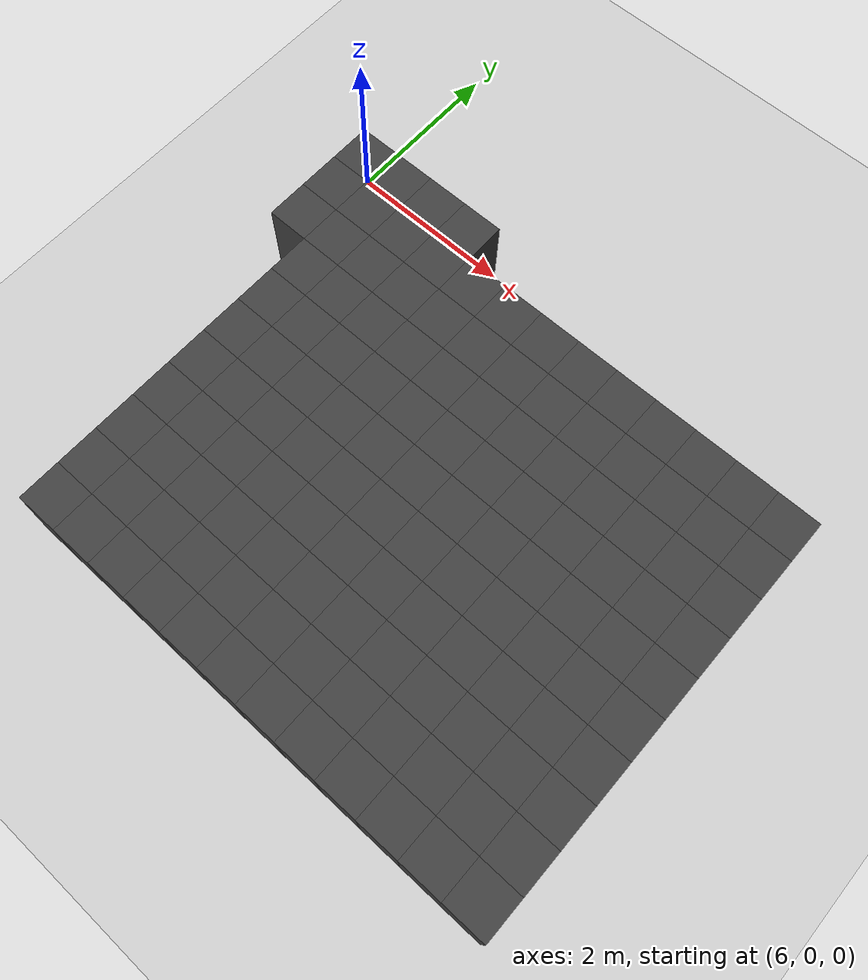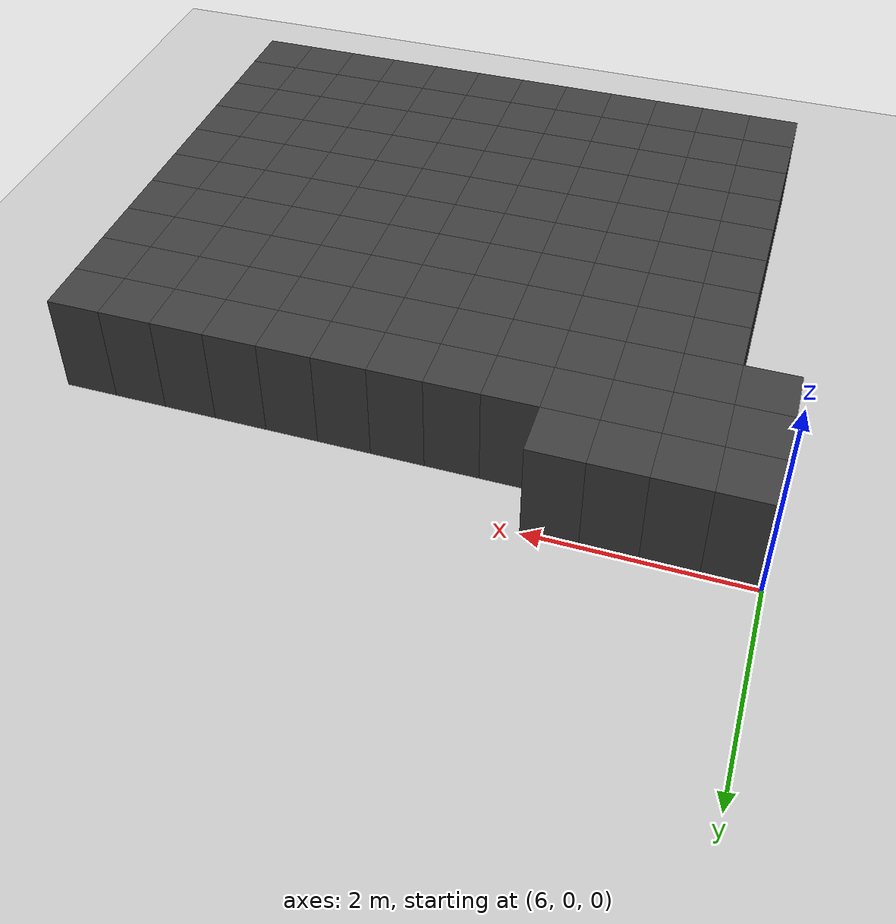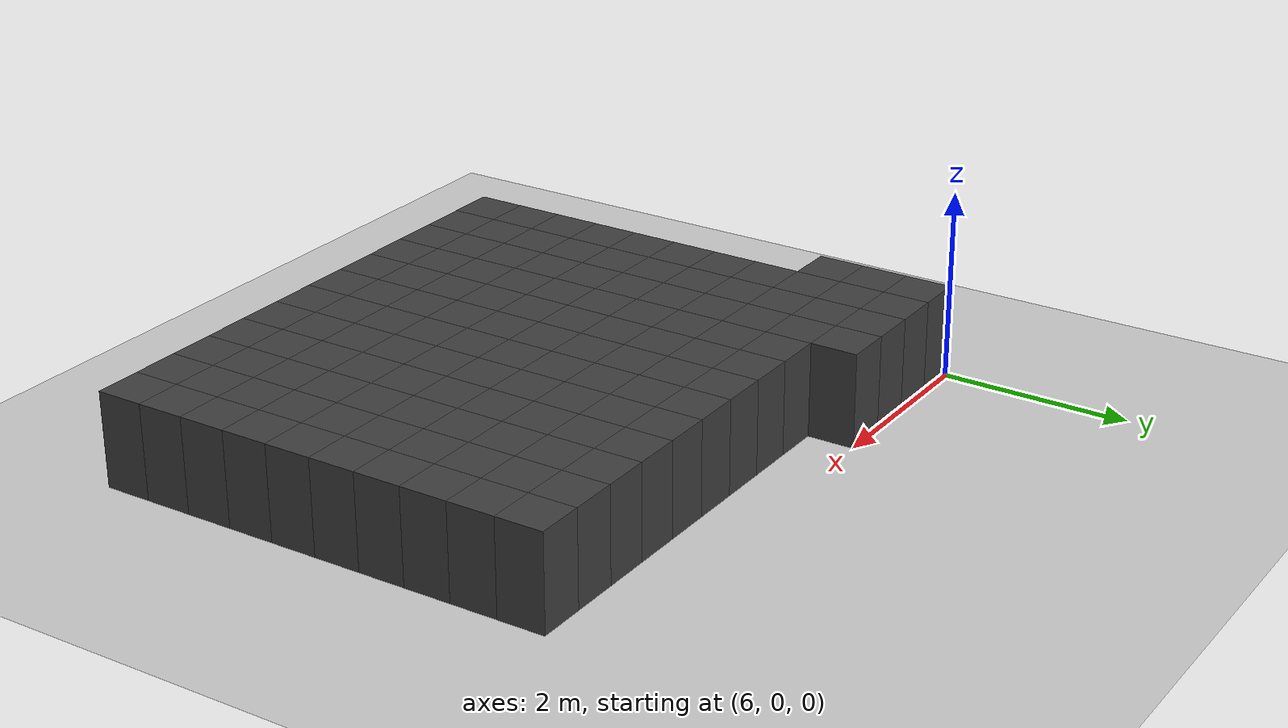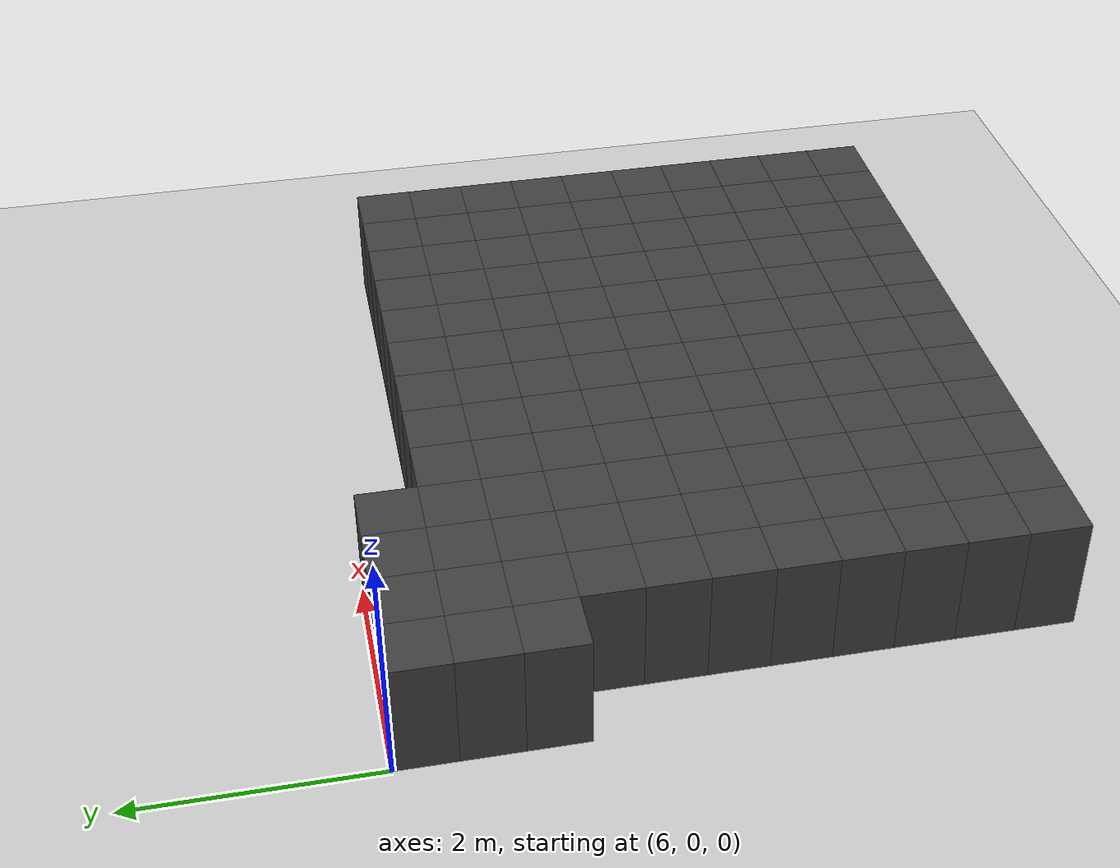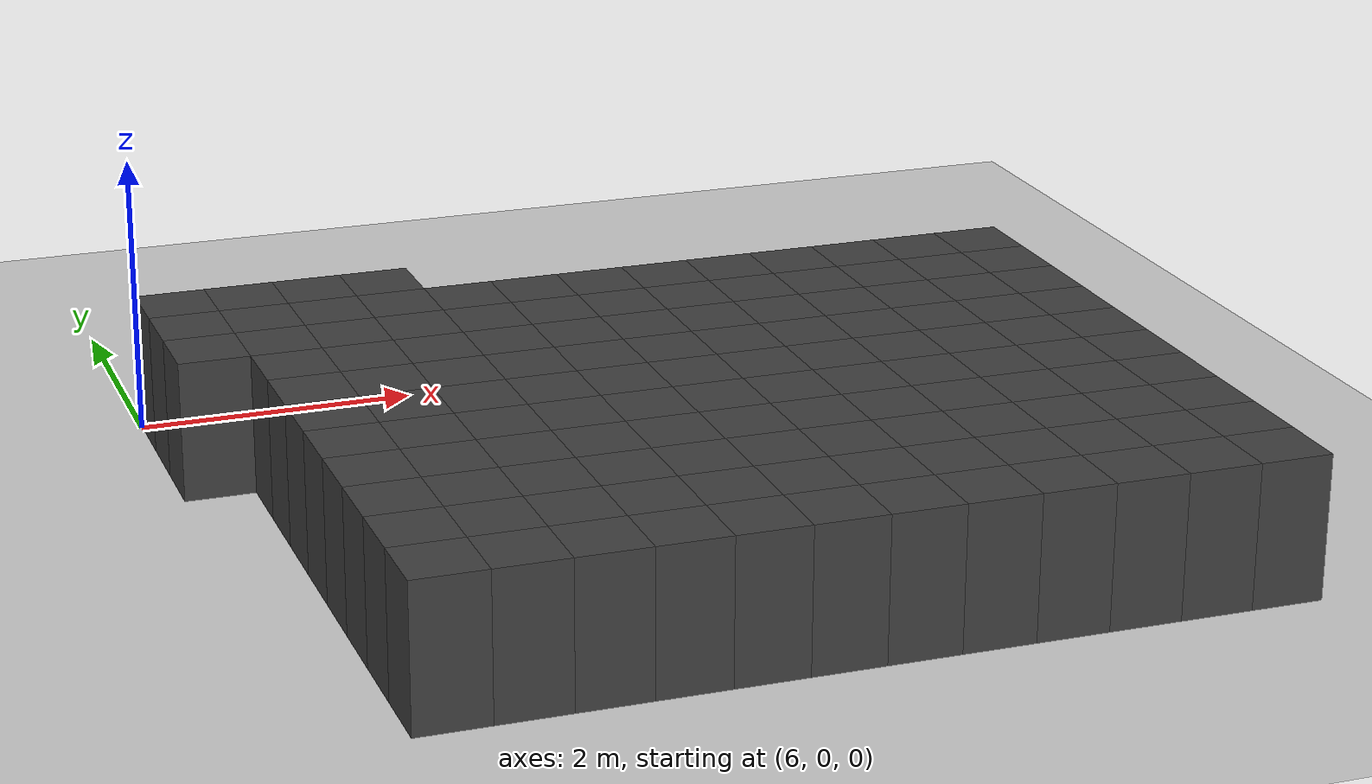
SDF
<sdf version="1.7">
 <world name="map_11779">
  <model name="ground_plane">
   <static>true</static>
   <link name="link">
    <collision name="collision">
     <geometry><plane><normal>0 0 1</normal><size>200 200</size></plane></geometry>
    </collision>
    <visual name="visual">
     <geometry><plane><normal>0 0 1</normal><size>200 200</size></plane></geometry>
     <material><ambient>0.8 0.8 0.8 1</ambient><diffuse>0.8 0.8 0.8 1</diffuse></material>
    </visual>
   </link>
  </model>
  <model name="maze_environment">
   <static>true</static>
   <link name="wall_1041">
    <pose>6.250 -0.250 0.500 0 0 0</pose>
    <collision name="col"><geometry><box><size>0.5 0.5 1.0</size></box></geometry></collision>
    <visual name="vis">
     <geometry><box><size>0.5 0.5 1.0</size></box></geometry>
     <material><ambient>0.15 0.15 0.15 1</ambient><diffuse>0.25 0.25 0.25 1</diffuse></material>
    </visual>
   </link>
   <link name="wall_1042">
    <pose>6.750 -0.250 0.500 0 0 0</pose>
    <collision name="col"><geometry><box><size>0.5 0.5 1.0</size></box></geometry></collision>
    <visual name="vis">
     <geometry><box><size>0.5 0.5 1.0</size></box></geometry>
     <material><ambient>0.15 0.15 0.15 1</ambient><diffuse>0.25 0.25 0.25 1</diffuse></material>
    </visual>
   </link>
   <link name="wall_1043">
    <pose>7.250 -0.250 0.500 0 0 0</pose>
    <collision name="col"><geometry><box><size>0.5 0.5 1.0</size></box></geometry></collision>
    <visual name="vis">
     <geometry><box><size>0.5 0.5 1.0</size></box></geometry>
     <material><ambient>0.15 0.15 0.15 1</ambient><diffuse>0.25 0.25 0.25 1</diffuse></material>
    </visual>
   </link>
   <link name="wall_1044">
    <pose>7.750 -0.250 0.500 0 0 0</pose>
    <collision name="col"><geometry><box><size>0.5 0.5 1.0</size></box></geometry></collision>
    <visual name="vis">
     <geometry><box><size>0.5 0.5 1.0</size></box></geometry>
     <material><ambient>0.15 0.15 0.15 1</ambient><diffuse>0.25 0.25 0.25 1</diffuse></material>
    </visual>
   </link>
   <link name="wall_1082">
    <pose>6.250 -0.750 0.500 0 0 0</pose>
    <collision name="col"><geometry><box><size>0.5 0.5 1.0</size></box></geometry></collision>
    <visual name="vis">
     <geometry><box><size>0.5 0.5 1.0</size></box></geometry>
     <material><ambient>0.15 0.15 0.15 1</ambient><diffuse>0.25 0.25 0.25 1</diffuse></material>
    </visual>
   </link>
   <link name="wall_1083">
    <pose>6.750 -0.750 0.500 0 0 0</pose>
    <collision name="col"><geometry><box><size>0.5 0.5 1.0</size></box></geometry></collision>
    <visual name="vis">
     <geometry><box><size>0.5 0.5 1.0</size></box></geometry>
     <material><ambient>0.15 0.15 0.15 1</ambient><diffuse>0.25 0.25 0.25 1</diffuse></material>
    </visual>
   </link>
   <link name="wall_1084">
    <pose>7.250 -0.750 0.500 0 0 0</pose>
    <collision name="col"><geometry><box><size>0.5 0.5 1.0</size></box></geometry></collision>
    <visual name="vis">
     <geometry><box><size>0.5 0.5 1.0</size></box></geometry>
     <material><ambient>0.15 0.15 0.15 1</ambient><diffuse>0.25 0.25 0.25 1</diffuse></material>
    </visual>
   </link>
   <link name="wall_1085">
    <pose>7.750 -0.750 0.500 0 0 0</pose>
    <collision name="col"><geometry><box><size>0.5 0.5 1.0</size></box></geometry></collision>
    <visual name="vis">
     <geometry><box><size>0.5 0.5 1.0</size></box></geometry>
     <material><ambient>0.15 0.15 0.15 1</ambient><diffuse>0.25 0.25 0.25 1</diffuse></material>
    </visual>
   </link>
   <link name="wall_1086">
    <pose>8.250 -0.750 0.500 0 0 0</pose>
    <collision name="col"><geometry><box><size>0.5 0.5 1.0</size></box></geometry></collision>
    <visual name="vis">
     <geometry><box><size>0.5 0.5 1.0</size></box></geometry>
     <material><ambient>0.15 0.15 0.15 1</ambient><diffuse>0.25 0.25 0.25 1</diffuse></material>
    </visual>
   </link>
   <link name="wall_1087">
    <pose>8.750 -0.750 0.500 0 0 0</pose>
    <collision name="col"><geometry><box><size>0.5 0.5 1.0</size></box></geometry></collision>
    <visual name="vis">
     <geometry><box><size>0.5 0.5 1.0</size></box></geometry>
     <material><ambient>0.15 0.15 0.15 1</ambient><diffuse>0.25 0.25 0.25 1</diffuse></material>
    </visual>
   </link>
   <link name="wall_1088">
    <pose>9.250 -0.750 0.500 0 0 0</pose>
    <collision name="col"><geometry><box><size>0.5 0.5 1.0</size></box></geometry></collision>
    <visual name="vis">
     <geometry><box><size>0.5 0.5 1.0</size></box></geometry>
     <material><ambient>0.15 0.15 0.15 1</ambient><diffuse>0.25 0.25 0.25 1</diffuse></material>
    </visual>
   </link>
   <link name="wall_1089">
    <pose>9.750 -0.750 0.500 0 0 0</pose>
    <collision name="col"><geometry><box><size>0.5 0.5 1.0</size></box></geometry></collision>
    <visual name="vis">
     <geometry><box><size>0.5 0.5 1.0</size></box></geometry>
     <material><ambient>0.15 0.15 0.15 1</ambient><diffuse>0.25 0.25 0.25 1</diffuse></material>
    </visual>
   </link>
   <link name="wall_1090">
    <pose>10.250 -0.750 0.500 0 0 0</pose>
    <collision name="col"><geometry><box><size>0.5 0.5 1.0</size></box></geometry></collision>
    <visual name="vis">
     <geometry><box><size>0.5 0.5 1.0</size></box></geometry>
     <material><ambient>0.15 0.15 0.15 1</ambient><diffuse>0.25 0.25 0.25 1</diffuse></material>
    </visual>
   </link>
   <link name="wall_1091">
    <pose>10.750 -0.750 0.500 0 0 0</pose>
    <collision name="col"><geometry><box><size>0.5 0.5 1.0</size></box></geometry></collision>
    <visual name="vis">
     <geometry><box><size>0.5 0.5 1.0</size></box></geometry>
     <material><ambient>0.15 0.15 0.15 1</ambient><diffuse>0.25 0.25 0.25 1</diffuse></material>
    </visual>
   </link>
   <link name="wall_1092">
    <pose>11.250 -0.750 0.500 0 0 0</pose>
    <collision name="col"><geometry><box><size>0.5 0.5 1.0</size></box></geometry></collision>
    <visual name="vis">
     <geometry><box><size>0.5 0.5 1.0</size></box></geometry>
     <material><ambient>0.15 0.15 0.15 1</ambient><diffuse>0.25 0.25 0.25 1</diffuse></material>
    </visual>
   </link>
   <link name="wall_1093">
    <pose>11.750 -0.750 0.500 0 0 0</pose>
    <collision name="col"><geometry><box><size>0.5 0.5 1.0</size></box></geometry></collision>
    <visual name="vis">
     <geometry><box><size>0.5 0.5 1.0</size></box></geometry>
     <material><ambient>0.15 0.15 0.15 1</ambient><diffuse>0.25 0.25 0.25 1</diffuse></material>
    </visual>
   </link>
   <link name="wall_1094">
    <pose>12.250 -0.750 0.500 0 0 0</pose>
    <collision name="col"><geometry><box><size>0.5 0.5 1.0</size></box></geometry></collision>
    <visual name="vis">
     <geometry><box><size>0.5 0.5 1.0</size></box></geometry>
     <material><ambient>0.15 0.15 0.15 1</ambient><diffuse>0.25 0.25 0.25 1</diffuse></material>
    </visual>
   </link>
   <link name="wall_1122">
    <pose>6.250 -1.250 0.500 0 0 0</pose>
    <collision name="col"><geometry><box><size>0.5 0.5 1.0</size></box></geometry></collision>
    <visual name="vis">
     <geometry><box><size>0.5 0.5 1.0</size></box></geometry>
     <material><ambient>0.15 0.15 0.15 1</ambient><diffuse>0.25 0.25 0.25 1</diffuse></material>
    </visual>
   </link>
   <link name="wall_1123">
    <pose>6.750 -1.250 0.500 0 0 0</pose>
    <collision name="col"><geometry><box><size>0.5 0.5 1.0</size></box></geometry></collision>
    <visual name="vis">
     <geometry><box><size>0.5 0.5 1.0</size></box></geometry>
     <material><ambient>0.15 0.15 0.15 1</ambient><diffuse>0.25 0.25 0.25 1</diffuse></material>
    </visual>
   </link>
   <link name="wall_1124">
    <pose>7.250 -1.250 0.500 0 0 0</pose>
    <collision name="col"><geometry><box><size>0.5 0.5 1.0</size></box></geometry></collision>
    <visual name="vis">
     <geometry><box><size>0.5 0.5 1.0</size></box></geometry>
     <material><ambient>0.15 0.15 0.15 1</ambient><diffuse>0.25 0.25 0.25 1</diffuse></material>
    </visual>
   </link>
   <link name="wall_1125">
    <pose>7.750 -1.250 0.500 0 0 0</pose>
    <collision name="col"><geometry><box><size>0.5 0.5 1.0</size></box></geometry></collision>
    <visual name="vis">
     <geometry><box><size>0.5 0.5 1.0</size></box></geometry>
     <material><ambient>0.15 0.15 0.15 1</ambient><diffuse>0.25 0.25 0.25 1</diffuse></material>
    </visual>
   </link>
   <link name="wall_1126">
    <pose>8.250 -1.250 0.500 0 0 0</pose>
    <collision name="col"><geometry><box><size>0.5 0.5 1.0</size></box></geometry></collision>
    <visual name="vis">
     <geometry><box><size>0.5 0.5 1.0</size></box></geometry>
     <material><ambient>0.15 0.15 0.15 1</ambient><diffuse>0.25 0.25 0.25 1</diffuse></material>
    </visual>
   </link>
   <link name="wall_1127">
    <pose>8.750 -1.250 0.500 0 0 0</pose>
    <collision name="col"><geometry><box><size>0.5 0.5 1.0</size></box></geometry></collision>
    <visual name="vis">
     <geometry><box><size>0.5 0.5 1.0</size></box></geometry>
     <material><ambient>0.15 0.15 0.15 1</ambient><diffuse>0.25 0.25 0.25 1</diffuse></material>
    </visual>
   </link>
   <link name="wall_1128">
    <pose>9.250 -1.250 0.500 0 0 0</pose>
    <collision name="col"><geometry><box><size>0.5 0.5 1.0</size></box></geometry></collision>
    <visual name="vis">
     <geometry><box><size>0.5 0.5 1.0</size></box></geometry>
     <material><ambient>0.15 0.15 0.15 1</ambient><diffuse>0.25 0.25 0.25 1</diffuse></material>
    </visual>
   </link>
   <link name="wall_1129">
    <pose>9.750 -1.250 0.500 0 0 0</pose>
    <collision name="col"><geometry><box><size>0.5 0.5 1.0</size></box></geometry></collision>
    <visual name="vis">
     <geometry><box><size>0.5 0.5 1.0</size></box></geometry>
     <material><ambient>0.15 0.15 0.15 1</ambient><diffuse>0.25 0.25 0.25 1</diffuse></material>
    </visual>
   </link>
   <link name="wall_1130">
    <pose>10.250 -1.250 0.500 0 0 0</pose>
    <collision name="col"><geometry><box><size>0.5 0.5 1.0</size></box></geometry></collision>
    <visual name="vis">
     <geometry><box><size>0.5 0.5 1.0</size></box></geometry>
     <material><ambient>0.15 0.15 0.15 1</ambient><diffuse>0.25 0.25 0.25 1</diffuse></material>
    </visual>
   </link>
   <link name="wall_1131">
    <pose>10.750 -1.250 0.500 0 0 0</pose>
    <collision name="col"><geometry><box><size>0.5 0.5 1.0</size></box></geometry></collision>
    <visual name="vis">
     <geometry><box><size>0.5 0.5 1.0</size></box></geometry>
     <material><ambient>0.15 0.15 0.15 1</ambient><diffuse>0.25 0.25 0.25 1</diffuse></material>
    </visual>
   </link>
   <link name="wall_1132">
    <pose>11.250 -1.250 0.500 0 0 0</pose>
    <collision name="col"><geometry><box><size>0.5 0.5 1.0</size></box></geometry></collision>
    <visual name="vis">
     <geometry><box><size>0.5 0.5 1.0</size></box></geometry>
     <material><ambient>0.15 0.15 0.15 1</ambient><diffuse>0.25 0.25 0.25 1</diffuse></material>
    </visual>
   </link>
   <link name="wall_1133">
    <pose>11.750 -1.250 0.500 0 0 0</pose>
    <collision name="col"><geometry><box><size>0.5 0.5 1.0</size></box></geometry></collision>
    <visual name="vis">
     <geometry><box><size>0.5 0.5 1.0</size></box></geometry>
     <material><ambient>0.15 0.15 0.15 1</ambient><diffuse>0.25 0.25 0.25 1</diffuse></material>
    </visual>
   </link>
   <link name="wall_1134">
    <pose>12.250 -1.250 0.500 0 0 0</pose>
    <collision name="col"><geometry><box><size>0.5 0.5 1.0</size></box></geometry></collision>
    <visual name="vis">
     <geometry><box><size>0.5 0.5 1.0</size></box></geometry>
     <material><ambient>0.15 0.15 0.15 1</ambient><diffuse>0.25 0.25 0.25 1</diffuse></material>
    </visual>
   </link>
   <link name="wall_1165">
    <pose>6.750 -1.750 0.500 0 0 0</pose>
    <collision name="col"><geometry><box><size>0.5 0.5 1.0</size></box></geometry></collision>
    <visual name="vis">
     <geometry><box><size>0.5 0.5 1.0</size></box></geometry>
     <material><ambient>0.15 0.15 0.15 1</ambient><diffuse>0.25 0.25 0.25 1</diffuse></material>
    </visual>
   </link>
   <link name="wall_1166">
    <pose>7.250 -1.750 0.500 0 0 0</pose>
    <collision name="col"><geometry><box><size>0.5 0.5 1.0</size></box></geometry></collision>
    <visual name="vis">
     <geometry><box><size>0.5 0.5 1.0</size></box></geometry>
     <material><ambient>0.15 0.15 0.15 1</ambient><diffuse>0.25 0.25 0.25 1</diffuse></material>
    </visual>
   </link>
   <link name="wall_1167">
    <pose>7.750 -1.750 0.500 0 0 0</pose>
    <collision name="col"><geometry><box><size>0.5 0.5 1.0</size></box></geometry></collision>
    <visual name="vis">
     <geometry><box><size>0.5 0.5 1.0</size></box></geometry>
     <material><ambient>0.15 0.15 0.15 1</ambient><diffuse>0.25 0.25 0.25 1</diffuse></material>
    </visual>
   </link>
   <link name="wall_1168">
    <pose>8.250 -1.750 0.500 0 0 0</pose>
    <collision name="col"><geometry><box><size>0.5 0.5 1.0</size></box></geometry></collision>
    <visual name="vis">
     <geometry><box><size>0.5 0.5 1.0</size></box></geometry>
     <material><ambient>0.15 0.15 0.15 1</ambient><diffuse>0.25 0.25 0.25 1</diffuse></material>
    </visual>
   </link>
   <link name="wall_1169">
    <pose>8.750 -1.750 0.500 0 0 0</pose>
    <collision name="col"><geometry><box><size>0.5 0.5 1.0</size></box></geometry></collision>
    <visual name="vis">
     <geometry><box><size>0.5 0.5 1.0</size></box></geometry>
     <material><ambient>0.15 0.15 0.15 1</ambient><diffuse>0.25 0.25 0.25 1</diffuse></material>
    </visual>
   </link>
   <link name="wall_1170">
    <pose>9.250 -1.750 0.500 0 0 0</pose>
    <collision name="col"><geometry><box><size>0.5 0.5 1.0</size></box></geometry></collision>
    <visual name="vis">
     <geometry><box><size>0.5 0.5 1.0</size></box></geometry>
     <material><ambient>0.15 0.15 0.15 1</ambient><diffuse>0.25 0.25 0.25 1</diffuse></material>
    </visual>
   </link>
   <link name="wall_1171">
    <pose>9.750 -1.750 0.500 0 0 0</pose>
    <collision name="col"><geometry><box><size>0.5 0.5 1.0</size></box></geometry></collision>
    <visual name="vis">
     <geometry><box><size>0.5 0.5 1.0</size></box></geometry>
     <material><ambient>0.15 0.15 0.15 1</ambient><diffuse>0.25 0.25 0.25 1</diffuse></material>
    </visual>
   </link>
   <link name="wall_1172">
    <pose>10.250 -1.750 0.500 0 0 0</pose>
    <collision name="col"><geometry><box><size>0.5 0.5 1.0</size></box></geometry></collision>
    <visual name="vis">
     <geometry><box><size>0.5 0.5 1.0</size></box></geometry>
     <material><ambient>0.15 0.15 0.15 1</ambient><diffuse>0.25 0.25 0.25 1</diffuse></material>
    </visual>
   </link>
   <link name="wall_1173">
    <pose>10.750 -1.750 0.500 0 0 0</pose>
    <collision name="col"><geometry><box><size>0.5 0.5 1.0</size></box></geometry></collision>
    <visual name="vis">
     <geometry><box><size>0.5 0.5 1.0</size></box></geometry>
     <material><ambient>0.15 0.15 0.15 1</ambient><diffuse>0.25 0.25 0.25 1</diffuse></material>
    </visual>
   </link>
   <link name="wall_1174">
    <pose>11.250 -1.750 0.500 0 0 0</pose>
    <collision name="col"><geometry><box><size>0.5 0.5 1.0</size></box></geometry></collision>
    <visual name="vis">
     <geometry><box><size>0.5 0.5 1.0</size></box></geometry>
     <material><ambient>0.15 0.15 0.15 1</ambient><diffuse>0.25 0.25 0.25 1</diffuse></material>
    </visual>
   </link>
   <link name="wall_1175">
    <pose>11.750 -1.750 0.500 0 0 0</pose>
    <collision name="col"><geometry><box><size>0.5 0.5 1.0</size></box></geometry></collision>
    <visual name="vis">
     <geometry><box><size>0.5 0.5 1.0</size></box></geometry>
     <material><ambient>0.15 0.15 0.15 1</ambient><diffuse>0.25 0.25 0.25 1</diffuse></material>
    </visual>
   </link>
   <link name="wall_1176">
    <pose>12.250 -1.750 0.500 0 0 0</pose>
    <collision name="col"><geometry><box><size>0.5 0.5 1.0</size></box></geometry></collision>
    <visual name="vis">
     <geometry><box><size>0.5 0.5 1.0</size></box></geometry>
     <material><ambient>0.15 0.15 0.15 1</ambient><diffuse>0.25 0.25 0.25 1</diffuse></material>
    </visual>
   </link>
   <link name="wall_1207">
    <pose>6.750 -2.250 0.500 0 0 0</pose>
    <collision name="col"><geometry><box><size>0.5 0.5 1.0</size></box></geometry></collision>
    <visual name="vis">
     <geometry><box><size>0.5 0.5 1.0</size></box></geometry>
     <material><ambient>0.15 0.15 0.15 1</ambient><diffuse>0.25 0.25 0.25 1</diffuse></material>
    </visual>
   </link>
   <link name="wall_1208">
    <pose>7.250 -2.250 0.500 0 0 0</pose>
    <collision name="col"><geometry><box><size>0.5 0.5 1.0</size></box></geometry></collision>
    <visual name="vis">
     <geometry><box><size>0.5 0.5 1.0</size></box></geometry>
     <material><ambient>0.15 0.15 0.15 1</ambient><diffuse>0.25 0.25 0.25 1</diffuse></material>
    </visual>
   </link>
   <link name="wall_1209">
    <pose>7.750 -2.250 0.500 0 0 0</pose>
    <collision name="col"><geometry><box><size>0.5 0.5 1.0</size></box></geometry></collision>
    <visual name="vis">
     <geometry><box><size>0.5 0.5 1.0</size></box></geometry>
     <material><ambient>0.15 0.15 0.15 1</ambient><diffuse>0.25 0.25 0.25 1</diffuse></material>
    </visual>
   </link>
   <link name="wall_1210">
    <pose>8.250 -2.250 0.500 0 0 0</pose>
    <collision name="col"><geometry><box><size>0.5 0.5 1.0</size></box></geometry></collision>
    <visual name="vis">
     <geometry><box><size>0.5 0.5 1.0</size></box></geometry>
     <material><ambient>0.15 0.15 0.15 1</ambient><diffuse>0.25 0.25 0.25 1</diffuse></material>
    </visual>
   </link>
   <link name="wall_1211">
    <pose>8.750 -2.250 0.500 0 0 0</pose>
    <collision name="col"><geometry><box><size>0.5 0.5 1.0</size></box></geometry></collision>
    <visual name="vis">
     <geometry><box><size>0.5 0.5 1.0</size></box></geometry>
     <material><ambient>0.15 0.15 0.15 1</ambient><diffuse>0.25 0.25 0.25 1</diffuse></material>
    </visual>
   </link>
   <link name="wall_1212">
    <pose>9.250 -2.250 0.500 0 0 0</pose>
    <collision name="col"><geometry><box><size>0.5 0.5 1.0</size></box></geometry></collision>
    <visual name="vis">
     <geometry><box><size>0.5 0.5 1.0</size></box></geometry>
     <material><ambient>0.15 0.15 0.15 1</ambient><diffuse>0.25 0.25 0.25 1</diffuse></material>
    </visual>
   </link>
   <link name="wall_1213">
    <pose>9.750 -2.250 0.500 0 0 0</pose>
    <collision name="col"><geometry><box><size>0.5 0.5 1.0</size></box></geometry></collision>
    <visual name="vis">
     <geometry><box><size>0.5 0.5 1.0</size></box></geometry>
     <material><ambient>0.15 0.15 0.15 1</ambient><diffuse>0.25 0.25 0.25 1</diffuse></material>
    </visual>
   </link>
   <link name="wall_1214">
    <pose>10.250 -2.250 0.500 0 0 0</pose>
    <collision name="col"><geometry><box><size>0.5 0.5 1.0</size></box></geometry></collision>
    <visual name="vis">
     <geometry><box><size>0.5 0.5 1.0</size></box></geometry>
     <material><ambient>0.15 0.15 0.15 1</ambient><diffuse>0.25 0.25 0.25 1</diffuse></material>
    </visual>
   </link>
   <link name="wall_1215">
    <pose>10.750 -2.250 0.500 0 0 0</pose>
    <collision name="col"><geometry><box><size>0.5 0.5 1.0</size></box></geometry></collision>
    <visual name="vis">
     <geometry><box><size>0.5 0.5 1.0</size></box></geometry>
     <material><ambient>0.15 0.15 0.15 1</ambient><diffuse>0.25 0.25 0.25 1</diffuse></material>
    </visual>
   </link>
   <link name="wall_1216">
    <pose>11.250 -2.250 0.500 0 0 0</pose>
    <collision name="col"><geometry><box><size>0.5 0.5 1.0</size></box></geometry></collision>
    <visual name="vis">
     <geometry><box><size>0.5 0.5 1.0</size></box></geometry>
     <material><ambient>0.15 0.15 0.15 1</ambient><diffuse>0.25 0.25 0.25 1</diffuse></material>
    </visual>
   </link>
   <link name="wall_1217">
    <pose>11.750 -2.250 0.500 0 0 0</pose>
    <collision name="col"><geometry><box><size>0.5 0.5 1.0</size></box></geometry></collision>
    <visual name="vis">
     <geometry><box><size>0.5 0.5 1.0</size></box></geometry>
     <material><ambient>0.15 0.15 0.15 1</ambient><diffuse>0.25 0.25 0.25 1</diffuse></material>
    </visual>
   </link>
   <link name="wall_1218">
    <pose>12.250 -2.250 0.500 0 0 0</pose>
    <collision name="col"><geometry><box><size>0.5 0.5 1.0</size></box></geometry></collision>
    <visual name="vis">
     <geometry><box><size>0.5 0.5 1.0</size></box></geometry>
     <material><ambient>0.15 0.15 0.15 1</ambient><diffuse>0.25 0.25 0.25 1</diffuse></material>
    </visual>
   </link>
   <link name="wall_1247">
    <pose>6.750 -2.750 0.500 0 0 0</pose>
    <collision name="col"><geometry><box><size>0.5 0.5 1.0</size></box></geometry></collision>
    <visual name="vis">
     <geometry><box><size>0.5 0.5 1.0</size></box></geometry>
     <material><ambient>0.15 0.15 0.15 1</ambient><diffuse>0.25 0.25 0.25 1</diffuse></material>
    </visual>
   </link>
   <link name="wall_1248">
    <pose>7.250 -2.750 0.500 0 0 0</pose>
    <collision name="col"><geometry><box><size>0.5 0.5 1.0</size></box></geometry></collision>
    <visual name="vis">
     <geometry><box><size>0.5 0.5 1.0</size></box></geometry>
     <material><ambient>0.15 0.15 0.15 1</ambient><diffuse>0.25 0.25 0.25 1</diffuse></material>
    </visual>
   </link>
   <link name="wall_1249">
    <pose>7.750 -2.750 0.500 0 0 0</pose>
    <collision name="col"><geometry><box><size>0.5 0.5 1.0</size></box></geometry></collision>
    <visual name="vis">
     <geometry><box><size>0.5 0.5 1.0</size></box></geometry>
     <material><ambient>0.15 0.15 0.15 1</ambient><diffuse>0.25 0.25 0.25 1</diffuse></material>
    </visual>
   </link>
   <link name="wall_1250">
    <pose>8.250 -2.750 0.500 0 0 0</pose>
    <collision name="col"><geometry><box><size>0.5 0.5 1.0</size></box></geometry></collision>
    <visual name="vis">
     <geometry><box><size>0.5 0.5 1.0</size></box></geometry>
     <material><ambient>0.15 0.15 0.15 1</ambient><diffuse>0.25 0.25 0.25 1</diffuse></material>
    </visual>
   </link>
   <link name="wall_1251">
    <pose>8.750 -2.750 0.500 0 0 0</pose>
    <collision name="col"><geometry><box><size>0.5 0.5 1.0</size></box></geometry></collision>
    <visual name="vis">
     <geometry><box><size>0.5 0.5 1.0</size></box></geometry>
     <material><ambient>0.15 0.15 0.15 1</ambient><diffuse>0.25 0.25 0.25 1</diffuse></material>
    </visual>
   </link>
   <link name="wall_1252">
    <pose>9.250 -2.750 0.500 0 0 0</pose>
    <collision name="col"><geometry><box><size>0.5 0.5 1.0</size></box></geometry></collision>
    <visual name="vis">
     <geometry><box><size>0.5 0.5 1.0</size></box></geometry>
     <material><ambient>0.15 0.15 0.15 1</ambient><diffuse>0.25 0.25 0.25 1</diffuse></material>
    </visual>
   </link>
   <link name="wall_1253">
    <pose>9.750 -2.750 0.500 0 0 0</pose>
    <collision name="col"><geometry><box><size>0.5 0.5 1.0</size></box></geometry></collision>
    <visual name="vis">
     <geometry><box><size>0.5 0.5 1.0</size></box></geometry>
     <material><ambient>0.15 0.15 0.15 1</ambient><diffuse>0.25 0.25 0.25 1</diffuse></material>
    </visual>
   </link>
   <link name="wall_1254">
    <pose>10.250 -2.750 0.500 0 0 0</pose>
    <collision name="col"><geometry><box><size>0.5 0.5 1.0</size></box></geometry></collision>
    <visual name="vis">
     <geometry><box><size>0.5 0.5 1.0</size></box></geometry>
     <material><ambient>0.15 0.15 0.15 1</ambient><diffuse>0.25 0.25 0.25 1</diffuse></material>
    </visual>
   </link>
   <link name="wall_1255">
    <pose>10.750 -2.750 0.500 0 0 0</pose>
    <collision name="col"><geometry><box><size>0.5 0.5 1.0</size></box></geometry></collision>
    <visual name="vis">
     <geometry><box><size>0.5 0.5 1.0</size></box></geometry>
     <material><ambient>0.15 0.15 0.15 1</ambient><diffuse>0.25 0.25 0.25 1</diffuse></material>
    </visual>
   </link>
   <link name="wall_1256">
    <pose>11.250 -2.750 0.500 0 0 0</pose>
    <collision name="col"><geometry><box><size>0.5 0.5 1.0</size></box></geometry></collision>
    <visual name="vis">
     <geometry><box><size>0.5 0.5 1.0</size></box></geometry>
     <material><ambient>0.15 0.15 0.15 1</ambient><diffuse>0.25 0.25 0.25 1</diffuse></material>
    </visual>
   </link>
   <link name="wall_1257">
    <pose>11.750 -2.750 0.500 0 0 0</pose>
    <collision name="col"><geometry><box><size>0.5 0.5 1.0</size></box></geometry></collision>
    <visual name="vis">
     <geometry><box><size>0.5 0.5 1.0</size></box></geometry>
     <material><ambient>0.15 0.15 0.15 1</ambient><diffuse>0.25 0.25 0.25 1</diffuse></material>
    </visual>
   </link>
   <link name="wall_1258">
    <pose>12.250 -2.750 0.500 0 0 0</pose>
    <collision name="col"><geometry><box><size>0.5 0.5 1.0</size></box></geometry></collision>
    <visual name="vis">
     <geometry><box><size>0.5 0.5 1.0</size></box></geometry>
     <material><ambient>0.15 0.15 0.15 1</ambient><diffuse>0.25 0.25 0.25 1</diffuse></material>
    </visual>
   </link>
   <link name="wall_1291">
    <pose>6.750 -3.250 0.500 0 0 0</pose>
    <collision name="col"><geometry><box><size>0.5 0.5 1.0</size></box></geometry></collision>
    <visual name="vis">
     <geometry><box><size>0.5 0.5 1.0</size></box></geometry>
     <material><ambient>0.15 0.15 0.15 1</ambient><diffuse>0.25 0.25 0.25 1</diffuse></material>
    </visual>
   </link>
   <link name="wall_1292">
    <pose>7.250 -3.250 0.500 0 0 0</pose>
    <collision name="col"><geometry><box><size>0.5 0.5 1.0</size></box></geometry></collision>
    <visual name="vis">
     <geometry><box><size>0.5 0.5 1.0</size></box></geometry>
     <material><ambient>0.15 0.15 0.15 1</ambient><diffuse>0.25 0.25 0.25 1</diffuse></material>
    </visual>
   </link>
   <link name="wall_1293">
    <pose>7.750 -3.250 0.500 0 0 0</pose>
    <collision name="col"><geometry><box><size>0.5 0.5 1.0</size></box></geometry></collision>
    <visual name="vis">
     <geometry><box><size>0.5 0.5 1.0</size></box></geometry>
     <material><ambient>0.15 0.15 0.15 1</ambient><diffuse>0.25 0.25 0.25 1</diffuse></material>
    </visual>
   </link>
   <link name="wall_1294">
    <pose>8.250 -3.250 0.500 0 0 0</pose>
    <collision name="col"><geometry><box><size>0.5 0.5 1.0</size></box></geometry></collision>
    <visual name="vis">
     <geometry><box><size>0.5 0.5 1.0</size></box></geometry>
     <material><ambient>0.15 0.15 0.15 1</ambient><diffuse>0.25 0.25 0.25 1</diffuse></material>
    </visual>
   </link>
   <link name="wall_1295">
    <pose>8.750 -3.250 0.500 0 0 0</pose>
    <collision name="col"><geometry><box><size>0.5 0.5 1.0</size></box></geometry></collision>
    <visual name="vis">
     <geometry><box><size>0.5 0.5 1.0</size></box></geometry>
     <material><ambient>0.15 0.15 0.15 1</ambient><diffuse>0.25 0.25 0.25 1</diffuse></material>
    </visual>
   </link>
   <link name="wall_1296">
    <pose>9.250 -3.250 0.500 0 0 0</pose>
    <collision name="col"><geometry><box><size>0.5 0.5 1.0</size></box></geometry></collision>
    <visual name="vis">
     <geometry><box><size>0.5 0.5 1.0</size></box></geometry>
     <material><ambient>0.15 0.15 0.15 1</ambient><diffuse>0.25 0.25 0.25 1</diffuse></material>
    </visual>
   </link>
   <link name="wall_1297">
    <pose>9.750 -3.250 0.500 0 0 0</pose>
    <collision name="col"><geometry><box><size>0.5 0.5 1.0</size></box></geometry></collision>
    <visual name="vis">
     <geometry><box><size>0.5 0.5 1.0</size></box></geometry>
     <material><ambient>0.15 0.15 0.15 1</ambient><diffuse>0.25 0.25 0.25 1</diffuse></material>
    </visual>
   </link>
   <link name="wall_1298">
    <pose>10.250 -3.250 0.500 0 0 0</pose>
    <collision name="col"><geometry><box><size>0.5 0.5 1.0</size></box></geometry></collision>
    <visual name="vis">
     <geometry><box><size>0.5 0.5 1.0</size></box></geometry>
     <material><ambient>0.15 0.15 0.15 1</ambient><diffuse>0.25 0.25 0.25 1</diffuse></material>
    </visual>
   </link>
   <link name="wall_1299">
    <pose>10.750 -3.250 0.500 0 0 0</pose>
    <collision name="col"><geometry><box><size>0.5 0.5 1.0</size></box></geometry></collision>
    <visual name="vis">
     <geometry><box><size>0.5 0.5 1.0</size></box></geometry>
     <material><ambient>0.15 0.15 0.15 1</ambient><diffuse>0.25 0.25 0.25 1</diffuse></material>
    </visual>
   </link>
   <link name="wall_1300">
    <pose>11.250 -3.250 0.500 0 0 0</pose>
    <collision name="col"><geometry><box><size>0.5 0.5 1.0</size></box></geometry></collision>
    <visual name="vis">
     <geometry><box><size>0.5 0.5 1.0</size></box></geometry>
     <material><ambient>0.15 0.15 0.15 1</ambient><diffuse>0.25 0.25 0.25 1</diffuse></material>
    </visual>
   </link>
   <link name="wall_1301">
    <pose>11.750 -3.250 0.500 0 0 0</pose>
    <collision name="col"><geometry><box><size>0.5 0.5 1.0</size></box></geometry></collision>
    <visual name="vis">
     <geometry><box><size>0.5 0.5 1.0</size></box></geometry>
     <material><ambient>0.15 0.15 0.15 1</ambient><diffuse>0.25 0.25 0.25 1</diffuse></material>
    </visual>
   </link>
   <link name="wall_1302">
    <pose>12.250 -3.250 0.500 0 0 0</pose>
    <collision name="col"><geometry><box><size>0.5 0.5 1.0</size></box></geometry></collision>
    <visual name="vis">
     <geometry><box><size>0.5 0.5 1.0</size></box></geometry>
     <material><ambient>0.15 0.15 0.15 1</ambient><diffuse>0.25 0.25 0.25 1</diffuse></material>
    </visual>
   </link>
   <link name="wall_1335">
    <pose>6.750 -3.750 0.500 0 0 0</pose>
    <collision name="col"><geometry><box><size>0.5 0.5 1.0</size></box></geometry></collision>
    <visual name="vis">
     <geometry><box><size>0.5 0.5 1.0</size></box></geometry>
     <material><ambient>0.15 0.15 0.15 1</ambient><diffuse>0.25 0.25 0.25 1</diffuse></material>
    </visual>
   </link>
   <link name="wall_1336">
    <pose>7.250 -3.750 0.500 0 0 0</pose>
    <collision name="col"><geometry><box><size>0.5 0.5 1.0</size></box></geometry></collision>
    <visual name="vis">
     <geometry><box><size>0.5 0.5 1.0</size></box></geometry>
     <material><ambient>0.15 0.15 0.15 1</ambient><diffuse>0.25 0.25 0.25 1</diffuse></material>
    </visual>
   </link>
   <link name="wall_1337">
    <pose>7.750 -3.750 0.500 0 0 0</pose>
    <collision name="col"><geometry><box><size>0.5 0.5 1.0</size></box></geometry></collision>
    <visual name="vis">
     <geometry><box><size>0.5 0.5 1.0</size></box></geometry>
     <material><ambient>0.15 0.15 0.15 1</ambient><diffuse>0.25 0.25 0.25 1</diffuse></material>
    </visual>
   </link>
   <link name="wall_1338">
    <pose>8.250 -3.750 0.500 0 0 0</pose>
    <collision name="col"><geometry><box><size>0.5 0.5 1.0</size></box></geometry></collision>
    <visual name="vis">
     <geometry><box><size>0.5 0.5 1.0</size></box></geometry>
     <material><ambient>0.15 0.15 0.15 1</ambient><diffuse>0.25 0.25 0.25 1</diffuse></material>
    </visual>
   </link>
   <link name="wall_1339">
    <pose>8.750 -3.750 0.500 0 0 0</pose>
    <collision name="col"><geometry><box><size>0.5 0.5 1.0</size></box></geometry></collision>
    <visual name="vis">
     <geometry><box><size>0.5 0.5 1.0</size></box></geometry>
     <material><ambient>0.15 0.15 0.15 1</ambient><diffuse>0.25 0.25 0.25 1</diffuse></material>
    </visual>
   </link>
   <link name="wall_1340">
    <pose>9.250 -3.750 0.500 0 0 0</pose>
    <collision name="col"><geometry><box><size>0.5 0.5 1.0</size></box></geometry></collision>
    <visual name="vis">
     <geometry><box><size>0.5 0.5 1.0</size></box></geometry>
     <material><ambient>0.15 0.15 0.15 1</ambient><diffuse>0.25 0.25 0.25 1</diffuse></material>
    </visual>
   </link>
   <link name="wall_1341">
    <pose>9.750 -3.750 0.500 0 0 0</pose>
    <collision name="col"><geometry><box><size>0.5 0.5 1.0</size></box></geometry></collision>
    <visual name="vis">
     <geometry><box><size>0.5 0.5 1.0</size></box></geometry>
     <material><ambient>0.15 0.15 0.15 1</ambient><diffuse>0.25 0.25 0.25 1</diffuse></material>
    </visual>
   </link>
   <link name="wall_1342">
    <pose>10.250 -3.750 0.500 0 0 0</pose>
    <collision name="col"><geometry><box><size>0.5 0.5 1.0</size></box></geometry></collision>
    <visual name="vis">
     <geometry><box><size>0.5 0.5 1.0</size></box></geometry>
     <material><ambient>0.15 0.15 0.15 1</ambient><diffuse>0.25 0.25 0.25 1</diffuse></material>
    </visual>
   </link>
   <link name="wall_1343">
    <pose>10.750 -3.750 0.500 0 0 0</pose>
    <collision name="col"><geometry><box><size>0.5 0.5 1.0</size></box></geometry></collision>
    <visual name="vis">
     <geometry><box><size>0.5 0.5 1.0</size></box></geometry>
     <material><ambient>0.15 0.15 0.15 1</ambient><diffuse>0.25 0.25 0.25 1</diffuse></material>
    </visual>
   </link>
   <link name="wall_1344">
    <pose>11.250 -3.750 0.500 0 0 0</pose>
    <collision name="col"><geometry><box><size>0.5 0.5 1.0</size></box></geometry></collision>
    <visual name="vis">
     <geometry><box><size>0.5 0.5 1.0</size></box></geometry>
     <material><ambient>0.15 0.15 0.15 1</ambient><diffuse>0.25 0.25 0.25 1</diffuse></material>
    </visual>
   </link>
   <link name="wall_1345">
    <pose>11.750 -3.750 0.500 0 0 0</pose>
    <collision name="col"><geometry><box><size>0.5 0.5 1.0</size></box></geometry></collision>
    <visual name="vis">
     <geometry><box><size>0.5 0.5 1.0</size></box></geometry>
     <material><ambient>0.15 0.15 0.15 1</ambient><diffuse>0.25 0.25 0.25 1</diffuse></material>
    </visual>
   </link>
   <link name="wall_1346">
    <pose>12.250 -3.750 0.500 0 0 0</pose>
    <collision name="col"><geometry><box><size>0.5 0.5 1.0</size></box></geometry></collision>
    <visual name="vis">
     <geometry><box><size>0.5 0.5 1.0</size></box></geometry>
     <material><ambient>0.15 0.15 0.15 1</ambient><diffuse>0.25 0.25 0.25 1</diffuse></material>
    </visual>
   </link>
   <link name="wall_1380">
    <pose>6.750 -4.250 0.500 0 0 0</pose>
    <collision name="col"><geometry><box><size>0.5 0.5 1.0</size></box></geometry></collision>
    <visual name="vis">
     <geometry><box><size>0.5 0.5 1.0</size></box></geometry>
     <material><ambient>0.15 0.15 0.15 1</ambient><diffuse>0.25 0.25 0.25 1</diffuse></material>
    </visual>
   </link>
   <link name="wall_1381">
    <pose>7.250 -4.250 0.500 0 0 0</pose>
    <collision name="col"><geometry><box><size>0.5 0.5 1.0</size></box></geometry></collision>
    <visual name="vis">
     <geometry><box><size>0.5 0.5 1.0</size></box></geometry>
     <material><ambient>0.15 0.15 0.15 1</ambient><diffuse>0.25 0.25 0.25 1</diffuse></material>
    </visual>
   </link>
   <link name="wall_1382">
    <pose>7.750 -4.250 0.500 0 0 0</pose>
    <collision name="col"><geometry><box><size>0.5 0.5 1.0</size></box></geometry></collision>
    <visual name="vis">
     <geometry><box><size>0.5 0.5 1.0</size></box></geometry>
     <material><ambient>0.15 0.15 0.15 1</ambient><diffuse>0.25 0.25 0.25 1</diffuse></material>
    </visual>
   </link>
   <link name="wall_1383">
    <pose>8.250 -4.250 0.500 0 0 0</pose>
    <collision name="col"><geometry><box><size>0.5 0.5 1.0</size></box></geometry></collision>
    <visual name="vis">
     <geometry><box><size>0.5 0.5 1.0</size></box></geometry>
     <material><ambient>0.15 0.15 0.15 1</ambient><diffuse>0.25 0.25 0.25 1</diffuse></material>
    </visual>
   </link>
   <link name="wall_1384">
    <pose>8.750 -4.250 0.500 0 0 0</pose>
    <collision name="col"><geometry><box><size>0.5 0.5 1.0</size></box></geometry></collision>
    <visual name="vis">
     <geometry><box><size>0.5 0.5 1.0</size></box></geometry>
     <material><ambient>0.15 0.15 0.15 1</ambient><diffuse>0.25 0.25 0.25 1</diffuse></material>
    </visual>
   </link>
   <link name="wall_1385">
    <pose>9.250 -4.250 0.500 0 0 0</pose>
    <collision name="col"><geometry><box><size>0.5 0.5 1.0</size></box></geometry></collision>
    <visual name="vis">
     <geometry><box><size>0.5 0.5 1.0</size></box></geometry>
     <material><ambient>0.15 0.15 0.15 1</ambient><diffuse>0.25 0.25 0.25 1</diffuse></material>
    </visual>
   </link>
   <link name="wall_1386">
    <pose>9.750 -4.250 0.500 0 0 0</pose>
    <collision name="col"><geometry><box><size>0.5 0.5 1.0</size></box></geometry></collision>
    <visual name="vis">
     <geometry><box><size>0.5 0.5 1.0</size></box></geometry>
     <material><ambient>0.15 0.15 0.15 1</ambient><diffuse>0.25 0.25 0.25 1</diffuse></material>
    </visual>
   </link>
   <link name="wall_1387">
    <pose>10.250 -4.250 0.500 0 0 0</pose>
    <collision name="col"><geometry><box><size>0.5 0.5 1.0</size></box></geometry></collision>
    <visual name="vis">
     <geometry><box><size>0.5 0.5 1.0</size></box></geometry>
     <material><ambient>0.15 0.15 0.15 1</ambient><diffuse>0.25 0.25 0.25 1</diffuse></material>
    </visual>
   </link>
   <link name="wall_1388">
    <pose>10.750 -4.250 0.500 0 0 0</pose>
    <collision name="col"><geometry><box><size>0.5 0.5 1.0</size></box></geometry></collision>
    <visual name="vis">
     <geometry><box><size>0.5 0.5 1.0</size></box></geometry>
     <material><ambient>0.15 0.15 0.15 1</ambient><diffuse>0.25 0.25 0.25 1</diffuse></material>
    </visual>
   </link>
   <link name="wall_1389">
    <pose>11.250 -4.250 0.500 0 0 0</pose>
    <collision name="col"><geometry><box><size>0.5 0.5 1.0</size></box></geometry></collision>
    <visual name="vis">
     <geometry><box><size>0.5 0.5 1.0</size></box></geometry>
     <material><ambient>0.15 0.15 0.15 1</ambient><diffuse>0.25 0.25 0.25 1</diffuse></material>
    </visual>
   </link>
   <link name="wall_1390">
    <pose>11.750 -4.250 0.500 0 0 0</pose>
    <collision name="col"><geometry><box><size>0.5 0.5 1.0</size></box></geometry></collision>
    <visual name="vis">
     <geometry><box><size>0.5 0.5 1.0</size></box></geometry>
     <material><ambient>0.15 0.15 0.15 1</ambient><diffuse>0.25 0.25 0.25 1</diffuse></material>
    </visual>
   </link>
   <link name="wall_1391">
    <pose>12.250 -4.250 0.500 0 0 0</pose>
    <collision name="col"><geometry><box><size>0.5 0.5 1.0</size></box></geometry></collision>
    <visual name="vis">
     <geometry><box><size>0.5 0.5 1.0</size></box></geometry>
     <material><ambient>0.15 0.15 0.15 1</ambient><diffuse>0.25 0.25 0.25 1</diffuse></material>
    </visual>
   </link>
   <link name="wall_1425">
    <pose>6.750 -4.750 0.500 0 0 0</pose>
    <collision name="col"><geometry><box><size>0.5 0.5 1.0</size></box></geometry></collision>
    <visual name="vis">
     <geometry><box><size>0.5 0.5 1.0</size></box></geometry>
     <material><ambient>0.15 0.15 0.15 1</ambient><diffuse>0.25 0.25 0.25 1</diffuse></material>
    </visual>
   </link>
   <link name="wall_1426">
    <pose>7.250 -4.750 0.500 0 0 0</pose>
    <collision name="col"><geometry><box><size>0.5 0.5 1.0</size></box></geometry></collision>
    <visual name="vis">
     <geometry><box><size>0.5 0.5 1.0</size></box></geometry>
     <material><ambient>0.15 0.15 0.15 1</ambient><diffuse>0.25 0.25 0.25 1</diffuse></material>
    </visual>
   </link>
   <link name="wall_1427">
    <pose>7.750 -4.750 0.500 0 0 0</pose>
    <collision name="col"><geometry><box><size>0.5 0.5 1.0</size></box></geometry></collision>
    <visual name="vis">
     <geometry><box><size>0.5 0.5 1.0</size></box></geometry>
     <material><ambient>0.15 0.15 0.15 1</ambient><diffuse>0.25 0.25 0.25 1</diffuse></material>
    </visual>
   </link>
   <link name="wall_1428">
    <pose>8.250 -4.750 0.500 0 0 0</pose>
    <collision name="col"><geometry><box><size>0.5 0.5 1.0</size></box></geometry></collision>
    <visual name="vis">
     <geometry><box><size>0.5 0.5 1.0</size></box></geometry>
     <material><ambient>0.15 0.15 0.15 1</ambient><diffuse>0.25 0.25 0.25 1</diffuse></material>
    </visual>
   </link>
   <link name="wall_1429">
    <pose>8.750 -4.750 0.500 0 0 0</pose>
    <collision name="col"><geometry><box><size>0.5 0.5 1.0</size></box></geometry></collision>
    <visual name="vis">
     <geometry><box><size>0.5 0.5 1.0</size></box></geometry>
     <material><ambient>0.15 0.15 0.15 1</ambient><diffuse>0.25 0.25 0.25 1</diffuse></material>
    </visual>
   </link>
   <link name="wall_1430">
    <pose>9.250 -4.750 0.500 0 0 0</pose>
    <collision name="col"><geometry><box><size>0.5 0.5 1.0</size></box></geometry></collision>
    <visual name="vis">
     <geometry><box><size>0.5 0.5 1.0</size></box></geometry>
     <material><ambient>0.15 0.15 0.15 1</ambient><diffuse>0.25 0.25 0.25 1</diffuse></material>
    </visual>
   </link>
   <link name="wall_1431">
    <pose>9.750 -4.750 0.500 0 0 0</pose>
    <collision name="col"><geometry><box><size>0.5 0.5 1.0</size></box></geometry></collision>
    <visual name="vis">
     <geometry><box><size>0.5 0.5 1.0</size></box></geometry>
     <material><ambient>0.15 0.15 0.15 1</ambient><diffuse>0.25 0.25 0.25 1</diffuse></material>
    </visual>
   </link>
   <link name="wall_1432">
    <pose>10.250 -4.750 0.500 0 0 0</pose>
    <collision name="col"><geometry><box><size>0.5 0.5 1.0</size></box></geometry></collision>
    <visual name="vis">
     <geometry><box><size>0.5 0.5 1.0</size></box></geometry>
     <material><ambient>0.15 0.15 0.15 1</ambient><diffuse>0.25 0.25 0.25 1</diffuse></material>
    </visual>
   </link>
   <link name="wall_1433">
    <pose>10.750 -4.750 0.500 0 0 0</pose>
    <collision name="col"><geometry><box><size>0.5 0.5 1.0</size></box></geometry></collision>
    <visual name="vis">
     <geometry><box><size>0.5 0.5 1.0</size></box></geometry>
     <material><ambient>0.15 0.15 0.15 1</ambient><diffuse>0.25 0.25 0.25 1</diffuse></material>
    </visual>
   </link>
   <link name="wall_1434">
    <pose>11.250 -4.750 0.500 0 0 0</pose>
    <collision name="col"><geometry><box><size>0.5 0.5 1.0</size></box></geometry></collision>
    <visual name="vis">
     <geometry><box><size>0.5 0.5 1.0</size></box></geometry>
     <material><ambient>0.15 0.15 0.15 1</ambient><diffuse>0.25 0.25 0.25 1</diffuse></material>
    </visual>
   </link>
   <link name="wall_1435">
    <pose>11.750 -4.750 0.500 0 0 0</pose>
    <collision name="col"><geometry><box><size>0.5 0.5 1.0</size></box></geometry></collision>
    <visual name="vis">
     <geometry><box><size>0.5 0.5 1.0</size></box></geometry>
     <material><ambient>0.15 0.15 0.15 1</ambient><diffuse>0.25 0.25 0.25 1</diffuse></material>
    </visual>
   </link>
   <link name="wall_1436">
    <pose>12.250 -4.750 0.500 0 0 0</pose>
    <collision name="col"><geometry><box><size>0.5 0.5 1.0</size></box></geometry></collision>
    <visual name="vis">
     <geometry><box><size>0.5 0.5 1.0</size></box></geometry>
     <material><ambient>0.15 0.15 0.15 1</ambient><diffuse>0.25 0.25 0.25 1</diffuse></material>
    </visual>
   </link>
   <link name="wall_1474">
    <pose>6.750 -5.250 0.500 0 0 0</pose>
    <collision name="col"><geometry><box><size>0.5 0.5 1.0</size></box></geometry></collision>
    <visual name="vis">
     <geometry><box><size>0.5 0.5 1.0</size></box></geometry>
     <material><ambient>0.15 0.15 0.15 1</ambient><diffuse>0.25 0.25 0.25 1</diffuse></material>
    </visual>
   </link>
   <link name="wall_1475">
    <pose>7.250 -5.250 0.500 0 0 0</pose>
    <collision name="col"><geometry><box><size>0.5 0.5 1.0</size></box></geometry></collision>
    <visual name="vis">
     <geometry><box><size>0.5 0.5 1.0</size></box></geometry>
     <material><ambient>0.15 0.15 0.15 1</ambient><diffuse>0.25 0.25 0.25 1</diffuse></material>
    </visual>
   </link>
   <link name="wall_1476">
    <pose>7.750 -5.250 0.500 0 0 0</pose>
    <collision name="col"><geometry><box><size>0.5 0.5 1.0</size></box></geometry></collision>
    <visual name="vis">
     <geometry><box><size>0.5 0.5 1.0</size></box></geometry>
     <material><ambient>0.15 0.15 0.15 1</ambient><diffuse>0.25 0.25 0.25 1</diffuse></material>
    </visual>
   </link>
   <link name="wall_1477">
    <pose>8.250 -5.250 0.500 0 0 0</pose>
    <collision name="col"><geometry><box><size>0.5 0.5 1.0</size></box></geometry></collision>
    <visual name="vis">
     <geometry><box><size>0.5 0.5 1.0</size></box></geometry>
     <material><ambient>0.15 0.15 0.15 1</ambient><diffuse>0.25 0.25 0.25 1</diffuse></material>
    </visual>
   </link>
   <link name="wall_1478">
    <pose>8.750 -5.250 0.500 0 0 0</pose>
    <collision name="col"><geometry><box><size>0.5 0.5 1.0</size></box></geometry></collision>
    <visual name="vis">
     <geometry><box><size>0.5 0.5 1.0</size></box></geometry>
     <material><ambient>0.15 0.15 0.15 1</ambient><diffuse>0.25 0.25 0.25 1</diffuse></material>
    </visual>
   </link>
   <link name="wall_1479">
    <pose>9.250 -5.250 0.500 0 0 0</pose>
    <collision name="col"><geometry><box><size>0.5 0.5 1.0</size></box></geometry></collision>
    <visual name="vis">
     <geometry><box><size>0.5 0.5 1.0</size></box></geometry>
     <material><ambient>0.15 0.15 0.15 1</ambient><diffuse>0.25 0.25 0.25 1</diffuse></material>
    </visual>
   </link>
   <link name="wall_1480">
    <pose>9.750 -5.250 0.500 0 0 0</pose>
    <collision name="col"><geometry><box><size>0.5 0.5 1.0</size></box></geometry></collision>
    <visual name="vis">
     <geometry><box><size>0.5 0.5 1.0</size></box></geometry>
     <material><ambient>0.15 0.15 0.15 1</ambient><diffuse>0.25 0.25 0.25 1</diffuse></material>
    </visual>
   </link>
   <link name="wall_1481">
    <pose>10.250 -5.250 0.500 0 0 0</pose>
    <collision name="col"><geometry><box><size>0.5 0.5 1.0</size></box></geometry></collision>
    <visual name="vis">
     <geometry><box><size>0.5 0.5 1.0</size></box></geometry>
     <material><ambient>0.15 0.15 0.15 1</ambient><diffuse>0.25 0.25 0.25 1</diffuse></material>
    </visual>
   </link>
   <link name="wall_1482">
    <pose>10.750 -5.250 0.500 0 0 0</pose>
    <collision name="col"><geometry><box><size>0.5 0.5 1.0</size></box></geometry></collision>
    <visual name="vis">
     <geometry><box><size>0.5 0.5 1.0</size></box></geometry>
     <material><ambient>0.15 0.15 0.15 1</ambient><diffuse>0.25 0.25 0.25 1</diffuse></material>
    </visual>
   </link>
   <link name="wall_1483">
    <pose>11.250 -5.250 0.500 0 0 0</pose>
    <collision name="col"><geometry><box><size>0.5 0.5 1.0</size></box></geometry></collision>
    <visual name="vis">
     <geometry><box><size>0.5 0.5 1.0</size></box></geometry>
     <material><ambient>0.15 0.15 0.15 1</ambient><diffuse>0.25 0.25 0.25 1</diffuse></material>
    </visual>
   </link>
   <link name="wall_1484">
    <pose>11.750 -5.250 0.500 0 0 0</pose>
    <collision name="col"><geometry><box><size>0.5 0.5 1.0</size></box></geometry></collision>
    <visual name="vis">
     <geometry><box><size>0.5 0.5 1.0</size></box></geometry>
     <material><ambient>0.15 0.15 0.15 1</ambient><diffuse>0.25 0.25 0.25 1</diffuse></material>
    </visual>
   </link>
   <link name="wall_1485">
    <pose>12.250 -5.250 0.500 0 0 0</pose>
    <collision name="col"><geometry><box><size>0.5 0.5 1.0</size></box></geometry></collision>
    <visual name="vis">
     <geometry><box><size>0.5 0.5 1.0</size></box></geometry>
     <material><ambient>0.15 0.15 0.15 1</ambient><diffuse>0.25 0.25 0.25 1</diffuse></material>
    </visual>
   </link>
  </model>
 </world>
</sdf>
